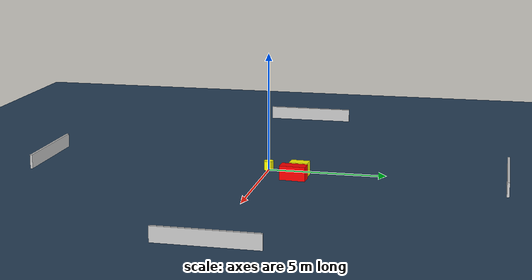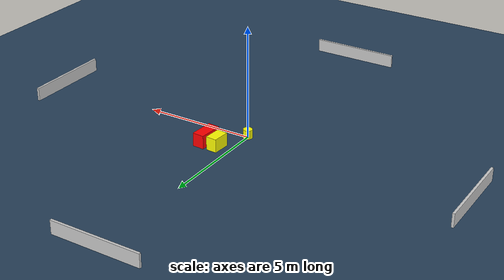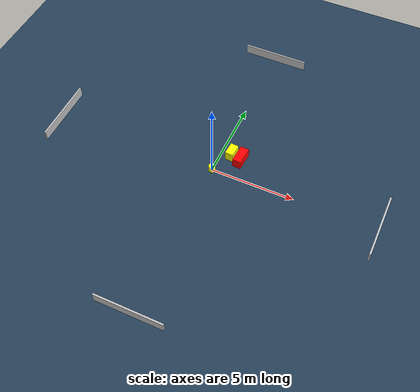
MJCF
<?xml version="1.0" ?>
<mujoco model="generated_environment">
  <option timestep="0.01" integrator="RK4" cone="elliptic"/>
  <default>
    <geom density="1"/>
  </default>
  <asset>
    <texture builtin="gradient" height="3072" name="skybox" rgb1="0.3 0.5 0.7" rgb2="0 0 0" type="skybox" width="512"/>
    <texture builtin="checker" height="300" name="groundplane" rgb1="0.2 0.3 0.4" rgb2="0.1 0.2 0.3" type="2d" width="300"/>
    <material name="groundplane" reflectance="0.2" texrepeat="5 5" texture="groundplane"/>
  </asset>
  <worldbody>
    <light dir="0 0 -1" directional="true" pos="0 0 1.5"/>
    <geom condim="3" friction="0.5 0.005 0.001" material="groundplane" name="floor" pos="0 0 0" size="0 0 0.05" type="plane"/>
    <body name="walls">
      <geom name="wall_1" condim="4" pos="-10.0 0.0 0.3" rgba="0.800000011920929 0.800000011920929 0.800000011920929 1.0" size="0.05 2.0 0.3" type="box"/>
      <geom name="wall_2" condim="4" pos="10.0 0.0 0.3" rgba="0.800000011920929 0.800000011920929 0.800000011920929 1.0" size="0.05 2.0 0.3" type="box"/>
      <geom name="wall_3" condim="4" pos="0.0 -10.0 0.3" rgba="0.800000011920929 0.800000011920929 0.800000011920929 1.0" size="2.0 0.05 0.3" type="box"/>
      <geom name="wall_4" condim="4" pos="0.0 10.0 0.3" rgba="0.800000011920929 0.800000011920929 0.800000011920929 1.0" size="2.0 0.05 0.3" type="box"/>
    </body>
    <body name="robot">
      <joint name="joint_x" type="slide" pos="0 0 0" axis="1 0 0"/>
      <joint name="joint_y" type="slide" pos="0 0 0" axis="0 1 0"/>
      <geom name="robot" type="cylinder" pos="0.0 0.0 0.2" size="0.2 0.2 0.0" mass="5.0" friction="1.0 0.005 0.0001" condim="4" rgba="1.0 1.0 0.0 1.0"/>
    </body>
    <body name="obstacle_1_movable">
      <geom name="obstacle_1_movable" condim="4" pos="0.6108463546838965 1.4529977625587671 0.3" euler="0 0 356.42878543910365" friction="0.0 0.005 0.001" rgba="1.0 1.0 0.0 1.0" size="0.24207752245779798 0.3891429931093906 0.3" type="box" mass="0.1"/>
      <joint type="free"/>
    </body>
    <body name="obstacle_2_static">
      <geom name="obstacle_2_static" condim="4" pos="1.2342943925987508 1.3127473947306563 0.3" euler="0 0 86.00470821667547" friction="0.0 0.005 0.001" rgba="1.0 0.0 0.0 1.0" size="0.5460217087053524 0.2614699779747355 0.3" type="box"/>
    </body>
  </worldbody>
  <actuator>
    <motor name="actuator_x" joint="joint_x" gear="1" ctrlrange="-1 1"/>
    <motor name="actuator_y" joint="joint_y" gear="1" ctrlrange="-1 1"/>
  </actuator>
</mujoco>
